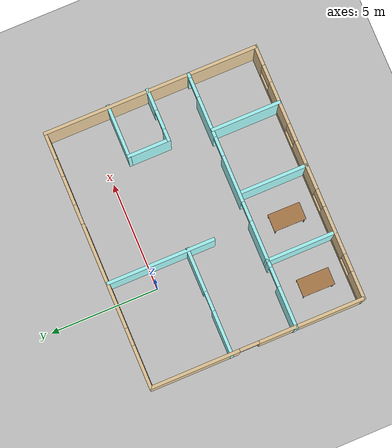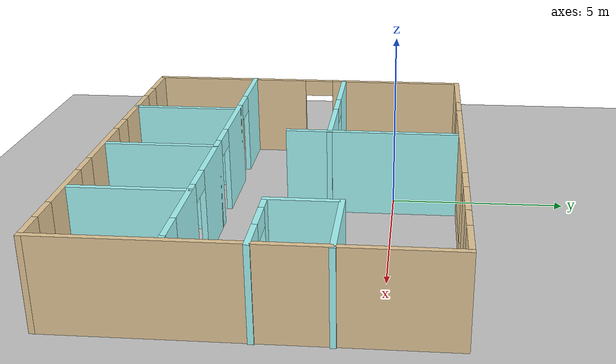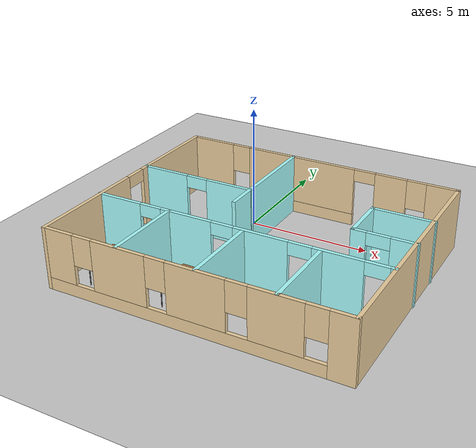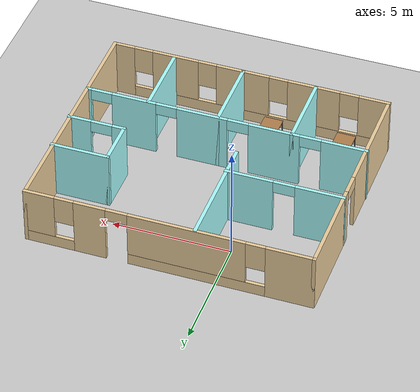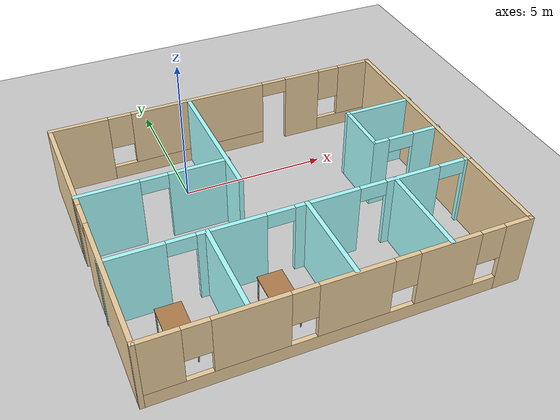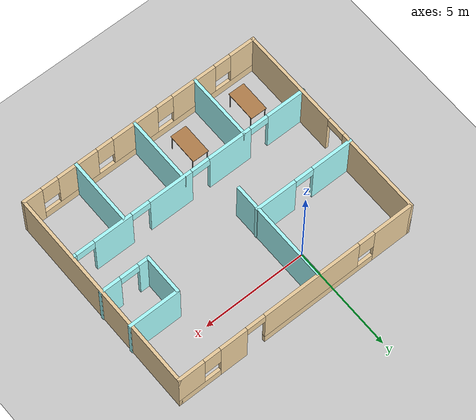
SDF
<sdf version="1.6">
 <world name="default">
  <model name="ground_plane">
   <static>1</static>
   <link name="link">
    <collision name="collision">
     <geometry><plane><normal>0 0 1</normal><size>100 100</size></plane></geometry>
     <surface><friction><ode><mu>100</mu><mu2>50</mu2></ode></friction></surface>
    </collision>
    <visual name="visual">
     <cast_shadows>0</cast_shadows>
     <geometry><plane><normal>0 0 1</normal><size>100 100</size></plane></geometry>
     <material>
      <script><uri>file://media/materials/scripts/gazebo.material</uri><name>Gazebo/Grey</name></script>
     </material>
    </visual>
   </link>
  </model>
  <model name="Building">
   <pose>1.95818 -3.03083 0 0 -0 0</pose>
   <link name="Wall_0">
    <pose>-0.006844 4.925 0 0 -0 0</pose>
    <visual name="Wall_0_Visual_0">
     <pose>-4.99079 0 1.25 0 -0 0</pose>
     <geometry><box><size>2.01841 0.15 2.5</size></box></geometry>
     <material>
      <script><uri>file://media/materials/scripts/gazebo.material</uri><name>Gazebo/Grey</name></script>
      <ambient>0.921569 0.807843 0.615686 1</ambient>
     </material>
     <meta><layer>0</layer></meta>
    </visual>
    <collision name="Wall_0_Collision_0">
     <geometry><box><size>2.01841 0.15 2.5</size></box></geometry>
     <pose>-4.99079 0 1.25 0 -0 0</pose>
    </collision>
    <visual name="Wall_0_Visual_1">
     <pose>3.22647 0 1.25 0 -0 0</pose>
     <geometry><box><size>1.33122 0.15 2.5</size></box></geometry>
     <material>
      <script><uri>file://media/materials/scripts/gazebo.material</uri><name>Gazebo/Grey</name></script>
      <ambient>0.921569 0.807843 0.615686 1</ambient>
     </material>
     <meta><layer>0</layer></meta>
    </visual>
    <collision name="Wall_0_Collision_1">
     <geometry><box><size>1.33122 0.15 2.5</size></box></geometry>
     <pose>3.22647 0 1.25 0 -0 0</pose>
    </collision>
    <visual name="Wall_0_Visual_2">
     <pose>-1.16037 0 0.25 0 -0 0</pose>
     <geometry><box><size>5.64244 0.15 0.5</size></box></geometry>
     <material>
      <script><uri>file://media/materials/scripts/gazebo.material</uri><name>Gazebo/Grey</name></script>
      <ambient>0.921569 0.807843 0.615686 1</ambient>
     </material>
     <meta><layer>0</layer></meta>
    </visual>
    <collision name="Wall_0_Collision_2">
     <geometry><box><size>5.64244 0.15 0.5</size></box></geometry>
     <pose>-1.16037 0 0.25 0 -0 0</pose>
    </collision>
    <visual name="Wall_0_Visual_3">
     <pose>4.94604 0 0.25 0 -0 0</pose>
     <geometry><box><size>2.10793 0.15 0.5</size></box></geometry>
     <material>
      <script><uri>file://media/materials/scripts/gazebo.material</uri><name>Gazebo/Grey</name></script>
      <ambient>0.921569 0.807843 0.615686 1</ambient>
     </material>
     <meta><layer>0</layer></meta>
    </visual>
    <collision name="Wall_0_Collision_3">
     <geometry><box><size>2.10793 0.15 0.5</size></box></geometry>
     <pose>4.94604 0 0.25 0 -0 0</pose>
    </collision>
    <visual name="Wall_0_Visual_4">
     <pose>-0.760365 0 1.5 0 -0 0</pose>
     <geometry><box><size>4.84244 0.15 2</size></box></geometry>
     <material>
      <script><uri>file://media/materials/scripts/gazebo.material</uri><name>Gazebo/Grey</name></script>
      <ambient>0.921569 0.807843 0.615686 1</ambient>
     </material>
     <meta><layer>0</layer></meta>
    </visual>
    <collision name="Wall_0_Collision_4">
     <geometry><box><size>4.84244 0.15 2</size></box></geometry>
     <pose>-0.760365 0 1.5 0 -0 0</pose>
    </collision>
    <visual name="Wall_0_Visual_5">
     <pose>-0.760365 0 1.5 0 -0 0</pose>
     <geometry><box><size>4.84244 0.15 2</size></box></geometry>
     <material>
      <script><uri>file://media/materials/scripts/gazebo.material</uri><name>Gazebo/Grey</name></script>
      <ambient>0.921569 0.807843 0.615686 1</ambient>
     </material>
     <meta><layer>0</layer></meta>
    </visual>
    <collision name="Wall_0_Collision_5">
     <geometry><box><size>4.84244 0.15 2</size></box></geometry>
     <pose>-0.760365 0 1.5 0 -0 0</pose>
    </collision>
    <visual name="Wall_0_Visual_6">
     <pose>5.34604 0 1.5 0 -0 0</pose>
     <geometry><box><size>1.30793 0.15 2</size></box></geometry>
     <material>
      <script><uri>file://media/materials/scripts/gazebo.material</uri><name>Gazebo/Grey</name></script>
      <ambient>0.921569 0.807843 0.615686 1</ambient>
     </material>
     <meta><layer>0</layer></meta>
    </visual>
    <collision name="Wall_0_Collision_6">
     <geometry><box><size>1.30793 0.15 2</size></box></geometry>
     <pose>5.34604 0 1.5 0 -0 0</pose>
    </collision>
    <visual name="Wall_0_Visual_7">
     <pose>-3.58159 0 1.9 0 -0 0</pose>
     <geometry><box><size>0.8 0.15 1.2</size></box></geometry>
     <material>
      <script><uri>file://media/materials/scripts/gazebo.material</uri><name>Gazebo/Grey</name></script>
      <ambient>0.921569 0.807843 0.615686 1</ambient>
     </material>
     <meta><layer>0</layer></meta>
    </visual>
    <collision name="Wall_0_Collision_7">
     <geometry><box><size>0.8 0.15 1.2</size></box></geometry>
     <pose>-3.58159 0 1.9 0 -0 0</pose>
    </collision>
    <visual name="Wall_0_Visual_8">
     <pose>4.29207 0 1.9 0 -0 0</pose>
     <geometry><box><size>0.8 0.15 1.2</size></box></geometry>
     <material>
      <script><uri>file://media/materials/scripts/gazebo.material</uri><name>Gazebo/Grey</name></script>
      <ambient>0.921569 0.807843 0.615686 1</ambient>
     </material>
     <meta><layer>0</layer></meta>
    </visual>
    <collision name="Wall_0_Collision_8">
     <geometry><box><size>0.8 0.15 1.2</size></box></geometry>
     <pose>4.29207 0 1.9 0 -0 0</pose>
    </collision>
    <visual name="Wall_0_Visual_9">
     <pose>2.11086 0 2.25 0 -0 0</pose>
     <geometry><box><size>0.9 0.15 0.5</size></box></geometry>
     <material>
      <script><uri>file://media/materials/scripts/gazebo.material</uri><name>Gazebo/Grey</name></script>
      <ambient>0.921569 0.807843 0.615686 1</ambient>
     </material>
     <meta><layer>0</layer></meta>
    </visual>
    <collision name="Wall_0_Collision_9">
     <geometry><box><size>0.9 0.15 0.5</size></box></geometry>
     <pose>2.11086 0 2.25 0 -0 0</pose>
    </collision>
    <visual name="Wall_0_Visual_10">
     <pose>2.11086 0 2.25 0 -0 0</pose>
     <geometry><box><size>0.9 0.15 0.5</size></box></geometry>
     <material>
      <script><uri>file://media/materials/scripts/gazebo.material</uri><name>Gazebo/Grey</name></script>
      <ambient>0.921569 0.807843 0.615686 1</ambient>
     </material>
     <meta><layer>0</layer></meta>
    </visual>
    <collision name="Wall_0_Collision_10">
     <geometry><box><size>0.9 0.15 0.5</size></box></geometry>
     <pose>2.11086 0 2.25 0 -0 0</pose>
    </collision>
   </link>
   <link name="Wall_1">
    <collision name="Wall_1_Collision">
     <geometry><box><size>10 0.15 2.5</size></box></geometry>
     <pose>0 0 1.25 0 -0 0</pose>
    </collision>
    <visual name="Wall_1_Visual">
     <pose>0 0 1.25 0 -0 0</pose>
     <geometry><box><size>10 0.15 2.5</size></box></geometry>
     <material>
      <script><uri>file://media/materials/scripts/gazebo.material</uri><name>Gazebo/Grey</name></script>
      <ambient>0.921569 0.807843 0.615686 1</ambient>
     </material>
     <meta><layer>0</layer></meta>
    </visual>
    <pose>5.91816 0 0 0 0 -1.5708</pose>
   </link>
   <link name="Wall_10">
    <pose>-0.033445 -1.77825 0 0 -0 0</pose>
    <visual name="Wall_10_Visual_0">
     <pose>-5.01927 0 1.25 0 -0 0</pose>
     <geometry><box><size>1.96147 0.15 2.5</size></box></geometry>
     <material>
      <script><uri>file://media/materials/scripts/gazebo.material</uri><name>Gazebo/Grey</name></script>
      <ambient>0.666667 1 1 1</ambient>
     </material>
     <meta><layer>0</layer></meta>
    </visual>
    <collision name="Wall_10_Collision_0">
     <geometry><box><size>1.96147 0.15 2.5</size></box></geometry>
     <pose>-5.01927 0 1.25 0 -0 0</pose>
    </collision>
    <visual name="Wall_10_Visual_1">
     <pose>-2.0599 0 1.25 0 -0 0</pose>
     <geometry><box><size>2.15726 0.15 2.5</size></box></geometry>
     <material>
      <script><uri>file://media/materials/scripts/gazebo.material</uri><name>Gazebo/Grey</name></script>
      <ambient>0.666667 1 1 1</ambient>
     </material>
     <meta><layer>0</layer></meta>
    </visual>
    <collision name="Wall_10_Collision_1">
     <geometry><box><size>2.15726 0.15 2.5</size></box></geometry>
     <pose>-2.0599 0 1.25 0 -0 0</pose>
    </collision>
    <visual name="Wall_10_Visual_2">
     <pose>0.99736 0 1.25 0 -0 0</pose>
     <geometry><box><size>2.15726 0.15 2.5</size></box></geometry>
     <material>
      <script><uri>file://media/materials/scripts/gazebo.material</uri><name>Gazebo/Grey</name></script>
      <ambient>0.666667 1 1 1</ambient>
     </material>
     <meta><layer>0</layer></meta>
    </visual>
    <collision name="Wall_10_Collision_2">
     <geometry><box><size>2.15726 0.15 2.5</size></box></geometry>
     <pose>0.99736 0 1.25 0 -0 0</pose>
    </collision>
    <visual name="Wall_10_Visual_3">
     <pose>3.92388 0 1.25 0 -0 0</pose>
     <geometry><box><size>1.89579 0.15 2.5</size></box></geometry>
     <material>
      <script><uri>file://media/materials/scripts/gazebo.material</uri><name>Gazebo/Grey</name></script>
      <ambient>0.666667 1 1 1</ambient>
     </material>
     <meta><layer>0</layer></meta>
    </visual>
    <collision name="Wall_10_Collision_3">
     <geometry><box><size>1.89579 0.15 2.5</size></box></geometry>
     <pose>3.92388 0 1.25 0 -0 0</pose>
    </collision>
    <visual name="Wall_10_Visual_4">
     <pose>5.88589 0 1.25 0 -0 0</pose>
     <geometry><box><size>0.228222 0.15 2.5</size></box></geometry>
     <material>
      <script><uri>file://media/materials/scripts/gazebo.material</uri><name>Gazebo/Grey</name></script>
      <ambient>0.666667 1 1 1</ambient>
     </material>
     <meta><layer>0</layer></meta>
    </visual>
    <collision name="Wall_10_Collision_4">
     <geometry><box><size>0.228222 0.15 2.5</size></box></geometry>
     <pose>5.88589 0 1.25 0 -0 0</pose>
    </collision>
    <visual name="Wall_10_Visual_5">
     <pose>-3.58853 0 2.25 0 -0 0</pose>
     <geometry><box><size>0.9 0.15 0.5</size></box></geometry>
     <material>
      <script><uri>file://media/materials/scripts/gazebo.material</uri><name>Gazebo/Grey</name></script>
      <ambient>0.666667 1 1 1</ambient>
     </material>
     <meta><layer>0</layer></meta>
    </visual>
    <collision name="Wall_10_Collision_5">
     <geometry><box><size>0.9 0.15 0.5</size></box></geometry>
     <pose>-3.58853 0 2.25 0 -0 0</pose>
    </collision>
    <visual name="Wall_10_Visual_6">
     <pose>-0.531272 0 2.25 0 -0 0</pose>
     <geometry><box><size>0.9 0.15 0.5</size></box></geometry>
     <material>
      <script><uri>file://media/materials/scripts/gazebo.material</uri><name>Gazebo/Grey</name></script>
      <ambient>0.666667 1 1 1</ambient>
     </material>
     <meta><layer>0</layer></meta>
    </visual>
    <collision name="Wall_10_Collision_6">
     <geometry><box><size>0.9 0.15 0.5</size></box></geometry>
     <pose>-0.531272 0 2.25 0 -0 0</pose>
    </collision>
    <visual name="Wall_10_Visual_7">
     <pose>2.52599 0 2.25 0 -0 0</pose>
     <geometry><box><size>0.9 0.15 0.5</size></box></geometry>
     <material>
      <script><uri>file://media/materials/scripts/gazebo.material</uri><name>Gazebo/Grey</name></script>
      <ambient>0.666667 1 1 1</ambient>
     </material>
     <meta><layer>0</layer></meta>
    </visual>
    <collision name="Wall_10_Collision_7">
     <geometry><box><size>0.9 0.15 0.5</size></box></geometry>
     <pose>2.52599 0 2.25 0 -0 0</pose>
    </collision>
    <visual name="Wall_10_Visual_8">
     <pose>5.32178 0 2.25 0 -0 0</pose>
     <geometry><box><size>0.9 0.15 0.5</size></box></geometry>
     <material>
      <script><uri>file://media/materials/scripts/gazebo.material</uri><name>Gazebo/Grey</name></script>
      <ambient>0.666667 1 1 1</ambient>
     </material>
     <meta><layer>0</layer></meta>
    </visual>
    <collision name="Wall_10_Collision_8">
     <geometry><box><size>0.9 0.15 0.5</size></box></geometry>
     <pose>5.32178 0 2.25 0 -0 0</pose>
    </collision>
   </link>
   <link name="Wall_12">
    <collision name="Wall_12_Collision">
     <geometry><box><size>3.25 0.15 2.5</size></box></geometry>
     <pose>0 0 1.25 0 -0 0</pose>
    </collision>
    <visual name="Wall_12_Visual">
     <pose>0 0 1.25 0 -0 0</pose>
     <geometry><box><size>3.25 0.15 2.5</size></box></geometry>
     <material>
      <script><uri>file://media/materials/scripts/gazebo.material</uri><name>Gazebo/Grey</name></script>
      <ambient>0.666667 1 1 1</ambient>
     </material>
     <meta><layer>0</layer></meta>
    </visual>
    <pose>-2.84622 -3.32825 0 0 0 -1.5708</pose>
   </link>
   <link name="Wall_14">
    <collision name="Wall_14_Collision">
     <geometry><box><size>3.25 0.15 2.5</size></box></geometry>
     <pose>0 0 1.25 0 -0 0</pose>
    </collision>
    <visual name="Wall_14_Visual">
     <pose>0 0 1.25 0 -0 0</pose>
     <geometry><box><size>3.25 0.15 2.5</size></box></geometry>
     <material>
      <script><uri>file://media/materials/scripts/gazebo.material</uri><name>Gazebo/Grey</name></script>
      <ambient>0.666667 1 1 1</ambient>
     </material>
     <meta><layer>0</layer></meta>
    </visual>
    <pose>0.292602 -3.32825 0 0 0 -1.5708</pose>
   </link>
   <link name="Wall_16">
    <collision name="Wall_16_Collision">
     <geometry><box><size>3.25 0.15 2.5</size></box></geometry>
     <pose>0 0 1.25 0 -0 0</pose>
    </collision>
    <visual name="Wall_16_Visual">
     <pose>0 0 1.25 0 -0 0</pose>
     <geometry><box><size>3.25 0.15 2.5</size></box></geometry>
     <material>
      <script><uri>file://media/materials/scripts/gazebo.material</uri><name>Gazebo/Grey</name></script>
      <ambient>0.666667 1 1 1</ambient>
     </material>
     <meta><layer>0</layer></meta>
    </visual>
    <pose>3.27182 -3.35485 0 0 0 -1.5708</pose>
   </link>
   <link name="Wall_18">
    <collision name="Wall_18_Collision">
     <geometry><box><size>5 0.15 2.5</size></box></geometry>
     <pose>0 0 1.25 0 -0 0</pose>
    </collision>
    <visual name="Wall_18_Visual">
     <pose>0 0 1.25 0 -0 0</pose>
     <geometry><box><size>5 0.15 2.5</size></box></geometry>
     <material>
      <script><uri>file://media/materials/scripts/gazebo.material</uri><name>Gazebo/Grey</name></script>
      <ambient>0.666667 1 1 1</ambient>
     </material>
     <meta><layer>0</layer></meta>
    </visual>
    <pose>-1.11721 2.45556 0 0 -0 1.5708</pose>
   </link>
   <link name="Wall_2">
    <pose>-0.006844 -4.925 0 0 -0 3.14159</pose>
    <visual name="Wall_2_Visual_0">
     <pose>-5.51894 0 1.25 0 -0 0</pose>
     <geometry><box><size>0.962125 0.15 2.5</size></box></geometry>
     <material>
      <script><uri>file://media/materials/scripts/gazebo.material</uri><name>Gazebo/Grey</name></script>
      <ambient>0.921569 0.807843 0.615686 1</ambient>
     </material>
     <meta><layer>0</layer></meta>
    </visual>
    <collision name="Wall_2_Collision_0">
     <geometry><box><size>0.962125 0.15 2.5</size></box></geometry>
     <pose>-5.51894 0 1.25 0 -0 0</pose>
    </collision>
    <visual name="Wall_2_Visual_1">
     <pose>0.481062 0 0.25 0 -0 0</pose>
     <geometry><box><size>11.0379 0.15 0.5</size></box></geometry>
     <material>
      <script><uri>file://media/materials/scripts/gazebo.material</uri><name>Gazebo/Grey</name></script>
      <ambient>0.921569 0.807843 0.615686 1</ambient>
     </material>
     <meta><layer>0</layer></meta>
    </visual>
    <collision name="Wall_2_Collision_1">
     <geometry><box><size>11.0379 0.15 0.5</size></box></geometry>
     <pose>0.481062 0 0.25 0 -0 0</pose>
    </collision>
    <visual name="Wall_2_Visual_2">
     <pose>-3.24137 0 1.5 0 -0 0</pose>
     <geometry><box><size>1.99302 0.15 2</size></box></geometry>
     <material>
      <script><uri>file://media/materials/scripts/gazebo.material</uri><name>Gazebo/Grey</name></script>
      <ambient>0.921569 0.807843 0.615686 1</ambient>
     </material>
     <meta><layer>0</layer></meta>
    </visual>
    <collision name="Wall_2_Collision_2">
     <geometry><box><size>1.99302 0.15 2</size></box></geometry>
     <pose>-3.24137 0 1.5 0 -0 0</pose>
    </collision>
    <visual name="Wall_2_Visual_3">
     <pose>-0.302043 0 1.5 0 -0 0</pose>
     <geometry><box><size>2.28562 0.15 2</size></box></geometry>
     <material>
      <script><uri>file://media/materials/scripts/gazebo.material</uri><name>Gazebo/Grey</name></script>
      <ambient>0.921569 0.807843 0.615686 1</ambient>
     </material>
     <meta><layer>0</layer></meta>
    </visual>
    <collision name="Wall_2_Collision_3">
     <geometry><box><size>2.28562 0.15 2</size></box></geometry>
     <pose>-0.302043 0 1.5 0 -0 0</pose>
    </collision>
    <visual name="Wall_2_Visual_4">
     <pose>2.75698 0 1.5 0 -0 0</pose>
     <geometry><box><size>2.23242 0.15 2</size></box></geometry>
     <material>
      <script><uri>file://media/materials/scripts/gazebo.material</uri><name>Gazebo/Grey</name></script>
      <ambient>0.921569 0.807843 0.615686 1</ambient>
     </material>
     <meta><layer>0</layer></meta>
    </visual>
    <collision name="Wall_2_Collision_4">
     <geometry><box><size>2.23242 0.15 2</size></box></geometry>
     <pose>2.75698 0 1.5 0 -0 0</pose>
    </collision>
    <visual name="Wall_2_Visual_5">
     <pose>5.3366 0 1.5 0 -0 0</pose>
     <geometry><box><size>1.32681 0.15 2</size></box></geometry>
     <material>
      <script><uri>file://media/materials/scripts/gazebo.material</uri><name>Gazebo/Grey</name></script>
      <ambient>0.921569 0.807843 0.615686 1</ambient>
     </material>
     <meta><layer>0</layer></meta>
    </visual>
    <collision name="Wall_2_Collision_5">
     <geometry><box><size>1.32681 0.15 2</size></box></geometry>
     <pose>5.3366 0 1.5 0 -0 0</pose>
    </collision>
    <visual name="Wall_2_Visual_6">
     <pose>-4.63788 0 1.9 0 -0 0</pose>
     <geometry><box><size>0.8 0.15 1.2</size></box></geometry>
     <material>
      <script><uri>file://media/materials/scripts/gazebo.material</uri><name>Gazebo/Grey</name></script>
      <ambient>0.921569 0.807843 0.615686 1</ambient>
     </material>
     <meta><layer>0</layer></meta>
    </visual>
    <collision name="Wall_2_Collision_6">
     <geometry><box><size>0.8 0.15 1.2</size></box></geometry>
     <pose>-4.63788 0 1.9 0 -0 0</pose>
    </collision>
    <visual name="Wall_2_Visual_7">
     <pose>-1.84485 0 1.9 0 -0 0</pose>
     <geometry><box><size>0.8 0.15 1.2</size></box></geometry>
     <material>
      <script><uri>file://media/materials/scripts/gazebo.material</uri><name>Gazebo/Grey</name></script>
      <ambient>0.921569 0.807843 0.615686 1</ambient>
     </material>
     <meta><layer>0</layer></meta>
    </visual>
    <collision name="Wall_2_Collision_7">
     <geometry><box><size>0.8 0.15 1.2</size></box></geometry>
     <pose>-1.84485 0 1.9 0 -0 0</pose>
    </collision>
    <visual name="Wall_2_Visual_8">
     <pose>1.24077 0 1.9 0 -0 0</pose>
     <geometry><box><size>0.8 0.15 1.2</size></box></geometry>
     <material>
      <script><uri>file://media/materials/scripts/gazebo.material</uri><name>Gazebo/Grey</name></script>
      <ambient>0.921569 0.807843 0.615686 1</ambient>
     </material>
     <meta><layer>0</layer></meta>
    </visual>
    <collision name="Wall_2_Collision_8">
     <geometry><box><size>0.8 0.15 1.2</size></box></geometry>
     <pose>1.24077 0 1.9 0 -0 0</pose>
    </collision>
    <visual name="Wall_2_Visual_9">
     <pose>4.27319 0 1.9 0 -0 0</pose>
     <geometry><box><size>0.8 0.15 1.2</size></box></geometry>
     <material>
      <script><uri>file://media/materials/scripts/gazebo.material</uri><name>Gazebo/Grey</name></script>
      <ambient>0.921569 0.807843 0.615686 1</ambient>
     </material>
     <meta><layer>0</layer></meta>
    </visual>
    <collision name="Wall_2_Collision_9">
     <geometry><box><size>0.8 0.15 1.2</size></box></geometry>
     <pose>4.27319 0 1.9 0 -0 0</pose>
    </collision>
   </link>
   <link name="Wall_20">
    <pose>-3.51561 1.20097 0 0 -0 3.14159</pose>
    <visual name="Wall_20_Visual_0">
     <pose>-1.48215 0 1.25 0 -0 0</pose>
     <geometry><box><size>2.03569 0.15 2.5</size></box></geometry>
     <material>
      <script><uri>file://media/materials/scripts/gazebo.material</uri><name>Gazebo/Grey</name></script>
      <ambient>0.666667 1 1 1</ambient>
     </material>
     <meta><layer>0</layer></meta>
    </visual>
    <collision name="Wall_20_Collision_0">
     <geometry><box><size>2.03569 0.15 2.5</size></box></geometry>
     <pose>-1.48215 0 1.25 0 -0 0</pose>
    </collision>
    <visual name="Wall_20_Visual_1">
     <pose>1.46785 0 1.25 0 -0 0</pose>
     <geometry><box><size>2.06431 0.15 2.5</size></box></geometry>
     <material>
      <script><uri>file://media/materials/scripts/gazebo.material</uri><name>Gazebo/Grey</name></script>
      <ambient>0.666667 1 1 1</ambient>
     </material>
     <meta><layer>0</layer></meta>
    </visual>
    <collision name="Wall_20_Collision_1">
     <geometry><box><size>2.06431 0.15 2.5</size></box></geometry>
     <pose>1.46785 0 1.25 0 -0 0</pose>
    </collision>
    <visual name="Wall_20_Visual_2">
     <pose>-0.01431 0 2.25 0 -0 0</pose>
     <geometry><box><size>0.9 0.15 0.5</size></box></geometry>
     <material>
      <script><uri>file://media/materials/scripts/gazebo.material</uri><name>Gazebo/Grey</name></script>
      <ambient>0.666667 1 1 1</ambient>
     </material>
     <meta><layer>0</layer></meta>
    </visual>
    <collision name="Wall_20_Collision_2">
     <geometry><box><size>0.9 0.15 0.5</size></box></geometry>
     <pose>-0.01431 0 2.25 0 -0 0</pose>
    </collision>
   </link>
   <link name="Wall_3">
    <pose>-5.93184 0 0 0 -0 1.5708</pose>
    <visual name="Wall_3_Visual_0">
     <pose>-2.53881 0 1.25 0 -0 0</pose>
     <geometry><box><size>4.92239 0.15 2.5</size></box></geometry>
     <material>
      <script><uri>file://media/materials/scripts/gazebo.material</uri><name>Gazebo/Grey</name></script>
      <ambient>0.921569 0.807843 0.615686 1</ambient>
     </material>
     <meta><layer>0</layer></meta>
    </visual>
    <collision name="Wall_3_Collision_0">
     <geometry><box><size>4.92239 0.15 2.5</size></box></geometry>
     <pose>-2.53881 0 1.25 0 -0 0</pose>
    </collision>
    <visual name="Wall_3_Visual_1">
     <pose>2.91119 0 1.25 0 -0 0</pose>
     <geometry><box><size>4.17762 0.15 2.5</size></box></geometry>
     <material>
      <script><uri>file://media/materials/scripts/gazebo.material</uri><name>Gazebo/Grey</name></script>
      <ambient>0.921569 0.807843 0.615686 1</ambient>
     </material>
     <meta><layer>0</layer></meta>
    </visual>
    <collision name="Wall_3_Collision_1">
     <geometry><box><size>4.17762 0.15 2.5</size></box></geometry>
     <pose>2.91119 0 1.25 0 -0 0</pose>
    </collision>
    <visual name="Wall_3_Visual_2">
     <pose>0.372385 0 2.25 0 -0 0</pose>
     <geometry><box><size>0.9 0.15 0.5</size></box></geometry>
     <material>
      <script><uri>file://media/materials/scripts/gazebo.material</uri><name>Gazebo/Grey</name></script>
      <ambient>0.921569 0.807843 0.615686 1</ambient>
     </material>
     <meta><layer>0</layer></meta>
    </visual>
    <collision name="Wall_3_Collision_2">
     <geometry><box><size>0.9 0.15 0.5</size></box></geometry>
     <pose>0.372385 0 2.25 0 -0 0</pose>
    </collision>
   </link>
   <link name="Wall_6">
    <collision name="Wall_6_Collision">
     <geometry><box><size>2.5 0.15 2.5</size></box></geometry>
     <pose>0 0 1.25 0 -0 0</pose>
    </collision>
    <visual name="Wall_6_Visual">
     <pose>0 0 1.25 0 -0 0</pose>
     <geometry><box><size>2.5 0.15 2.5</size></box></geometry>
     <material>
      <script><uri>file://media/materials/scripts/gazebo.material</uri><name>Gazebo/Grey</name></script>
      <ambient>0.666667 1 1 1</ambient>
     </material>
     <meta><layer>0</layer></meta>
    </visual>
    <pose>4.78344 1.97238 0 0 -0 3.14159</pose>
   </link>
   <link name="Wall_7">
    <collision name="Wall_7_Collision">
     <geometry><box><size>2 0.15 2.5</size></box></geometry>
     <pose>0 0 1.25 0 -0 0</pose>
    </collision>
    <visual name="Wall_7_Visual">
     <pose>0 0 1.25 0 -0 0</pose>
     <geometry><box><size>2 0.15 2.5</size></box></geometry>
     <material>
      <script><uri>file://media/materials/scripts/gazebo.material</uri><name>Gazebo/Grey</name></script>
      <ambient>0.666667 1 1 1</ambient>
     </material>
     <meta><layer>0</layer></meta>
    </visual>
    <pose>3.60844 1.04738 0 0 0 -1.5708</pose>
   </link>
   <link name="Wall_8">
    <pose>4.78344 0.122378 0 0 -0 0</pose>
    <visual name="Wall_8_Visual_0">
     <pose>-0.9596 0 1.25 0 -0 0</pose>
     <geometry><box><size>0.5808 0.15 2.5</size></box></geometry>
     <material>
      <script><uri>file://media/materials/scripts/gazebo.material</uri><name>Gazebo/Grey</name></script>
      <ambient>0.666667 1 1 1</ambient>
     </material>
     <meta><layer>0</layer></meta>
    </visual>
    <collision name="Wall_8_Collision_0">
     <geometry><box><size>0.5808 0.15 2.5</size></box></geometry>
     <pose>-0.9596 0 1.25 0 -0 0</pose>
    </collision>
    <visual name="Wall_8_Visual_1">
     <pose>0.7404 0 1.25 0 -0 0</pose>
     <geometry><box><size>1.0192 0.15 2.5</size></box></geometry>
     <material>
      <script><uri>file://media/materials/scripts/gazebo.material</uri><name>Gazebo/Grey</name></script>
      <ambient>0.666667 1 1 1</ambient>
     </material>
     <meta><layer>0</layer></meta>
    </visual>
    <collision name="Wall_8_Collision_1">
     <geometry><box><size>1.0192 0.15 2.5</size></box></geometry>
     <pose>0.7404 0 1.25 0 -0 0</pose>
    </collision>
    <visual name="Wall_8_Visual_2">
     <pose>-0.2192 0 2.25 0 -0 0</pose>
     <geometry><box><size>0.9 0.15 0.5</size></box></geometry>
     <material>
      <script><uri>file://media/materials/scripts/gazebo.material</uri><name>Gazebo/Grey</name></script>
      <ambient>0.666667 1 1 1</ambient>
     </material>
     <meta><layer>0</layer></meta>
    </visual>
    <collision name="Wall_8_Collision_2">
     <geometry><box><size>0.9 0.15 0.5</size></box></geometry>
     <pose>-0.2192 0 2.25 0 -0 0</pose>
    </collision>
   </link>
   <static>1</static>
  </model>
  <model name="table_clone">
   <static>1</static>
   <link name="link">
    <collision name="surface">
     <pose>0 0 1 0 -0 0</pose>
     <geometry><box><size>1.5 0.8 0.03</size></box></geometry>
     <surface><friction><ode><mu>0.6</mu><mu2>0.6</mu2></ode></friction></surface>
    </collision>
    <visual name="visual1">
     <pose>0 0 1 0 -0 0</pose>
     <geometry><box><size>1.5 0.8 0.03</size></box></geometry>
     <material>
      <script><uri>file://media/materials/scripts/gazebo.material</uri><name>Gazebo/Wood</name></script>
     </material>
    </visual>
    <collision name="front_left_leg">
     <pose>0.68 0.38 0.5 0 -0 0</pose>
     <geometry><cylinder><radius>0.02</radius><length>1</length></cylinder></geometry>
    </collision>
    <visual name="front_left_leg">
     <pose>0.68 0.38 0.5 0 -0 0</pose>
     <geometry><cylinder><radius>0.02</radius><length>1</length></cylinder></geometry>
     <material>
      <script><uri>file://media/materials/scripts/gazebo.material</uri><name>Gazebo/Grey</name></script>
     </material>
    </visual>
    <collision name="front_right_leg">
     <pose>0.68 -0.38 0.5 0 -0 0</pose>
     <geometry><cylinder><radius>0.02</radius><length>1</length></cylinder></geometry>
    </collision>
    <visual name="front_right_leg">
     <pose>0.68 -0.38 0.5 0 -0 0</pose>
     <geometry><cylinder><radius>0.02</radius><length>1</length></cylinder></geometry>
     <material>
      <script><uri>file://media/materials/scripts/gazebo.material</uri><name>Gazebo/Grey</name></script>
     </material>
    </visual>
    <collision name="back_right_leg">
     <pose>-0.68 -0.38 0.5 0 -0 0</pose>
     <geometry><cylinder><radius>0.02</radius><length>1</length></cylinder></geometry>
    </collision>
    <visual name="back_right_leg">
     <pose>-0.68 -0.38 0.5 0 -0 0</pose>
     <geometry><cylinder><radius>0.02</radius><length>1</length></cylinder></geometry>
     <material>
      <script><uri>file://media/materials/scripts/gazebo.material</uri><name>Gazebo/Grey</name></script>
     </material>
    </visual>
    <collision name="back_left_leg">
     <pose>-0.68 0.38 0.5 0 -0 0</pose>
     <geometry><cylinder><radius>0.02</radius><length>1</length></cylinder></geometry>
    </collision>
    <visual name="back_left_leg">
     <pose>-0.68 0.38 0.5 0 -0 0</pose>
     <geometry><cylinder><radius>0.02</radius><length>1</length></cylinder></geometry>
     <material>
      <script><uri>file://media/materials/scripts/gazebo.material</uri><name>Gazebo/Grey</name></script>
     </material>
    </visual>
   </link>
   <pose>0.645696 -6.42843 0 0 -0 1.56186</pose>
  </model>
  <model name="table_clone_0">
   <static>1</static>
   <link name="link">
    <collision name="surface">
     <pose>0 0 1 0 -0 0</pose>
     <geometry><box><size>1.5 0.8 0.03</size></box></geometry>
     <surface><friction><ode><mu>0.6</mu><mu2>0.6</mu2></ode></friction></surface>
    </collision>
    <visual name="visual1">
     <pose>0 0 1 0 -0 0</pose>
     <geometry><box><size>1.5 0.8 0.03</size></box></geometry>
     <material>
      <script><uri>file://media/materials/scripts/gazebo.material</uri><name>Gazebo/Wood</name></script>
     </material>
    </visual>
    <collision name="front_left_leg">
     <pose>0.68 0.38 0.5 0 -0 0</pose>
     <geometry><cylinder><radius>0.02</radius><length>1</length></cylinder></geometry>
    </collision>
    <visual name="front_left_leg">
     <pose>0.68 0.38 0.5 0 -0 0</pose>
     <geometry><cylinder><radius>0.02</radius><length>1</length></cylinder></geometry>
     <material>
      <script><uri>file://media/materials/scripts/gazebo.material</uri><name>Gazebo/Grey</name></script>
     </material>
    </visual>
    <collision name="front_right_leg">
     <pose>0.68 -0.38 0.5 0 -0 0</pose>
     <geometry><cylinder><radius>0.02</radius><length>1</length></cylinder></geometry>
    </collision>
    <visual name="front_right_leg">
     <pose>0.68 -0.38 0.5 0 -0 0</pose>
     <geometry><cylinder><radius>0.02</radius><length>1</length></cylinder></geometry>
     <material>
      <script><uri>file://media/materials/scripts/gazebo.material</uri><name>Gazebo/Grey</name></script>
     </material>
    </visual>
    <collision name="back_right_leg">
     <pose>-0.68 -0.38 0.5 0 -0 0</pose>
     <geometry><cylinder><radius>0.02</radius><length>1</length></cylinder></geometry>
    </collision>
    <visual name="back_right_leg">
     <pose>-0.68 -0.38 0.5 0 -0 0</pose>
     <geometry><cylinder><radius>0.02</radius><length>1</length></cylinder></geometry>
     <material>
      <script><uri>file://media/materials/scripts/gazebo.material</uri><name>Gazebo/Grey</name></script>
     </material>
    </visual>
    <collision name="back_left_leg">
     <pose>-0.68 0.38 0.5 0 -0 0</pose>
     <geometry><cylinder><radius>0.02</radius><length>1</length></cylinder></geometry>
    </collision>
    <visual name="back_left_leg">
     <pose>-0.68 0.38 0.5 0 -0 0</pose>
     <geometry><cylinder><radius>0.02</radius><length>1</length></cylinder></geometry>
     <material>
      <script><uri>file://media/materials/scripts/gazebo.material</uri><name>Gazebo/Grey</name></script>
     </material>
    </visual>
   </link>
   <pose>-2.46792 -6.45919 0 0 -0 1.56186</pose>
  </model>
 </world>
</sdf>
